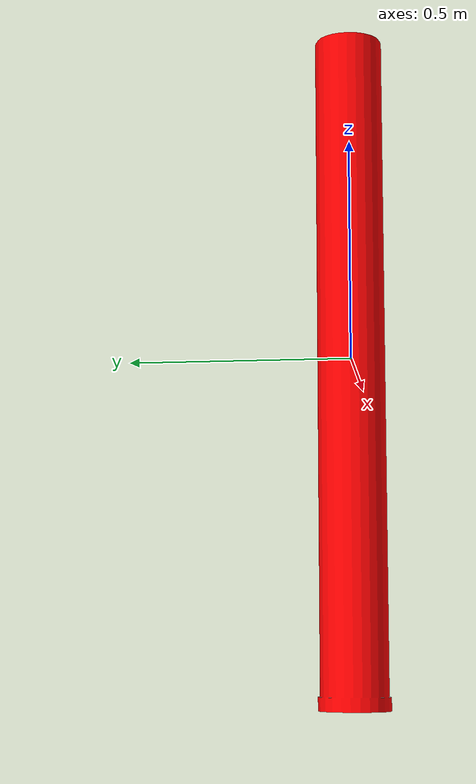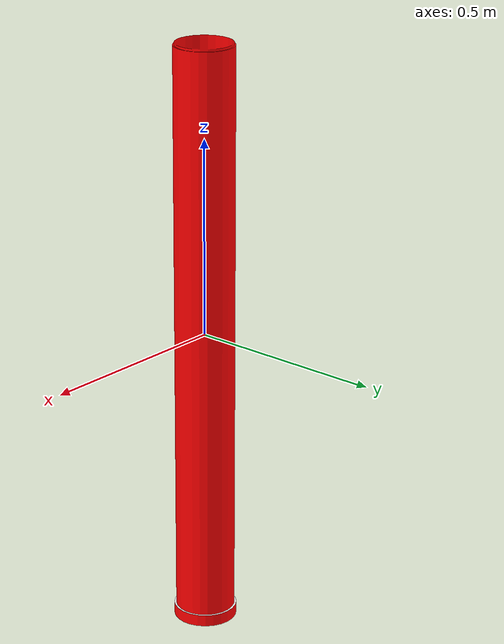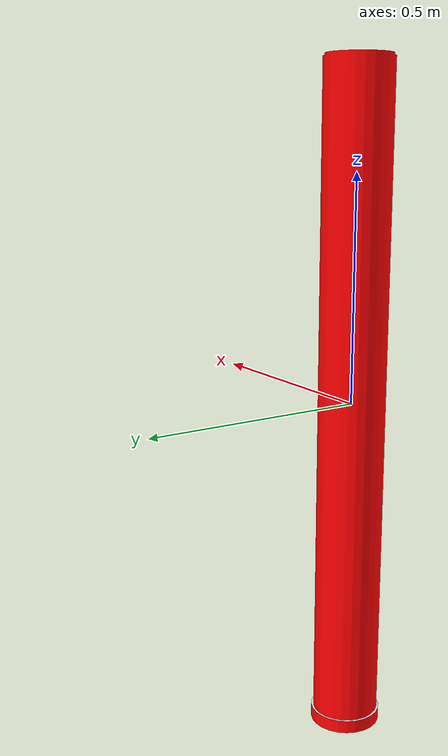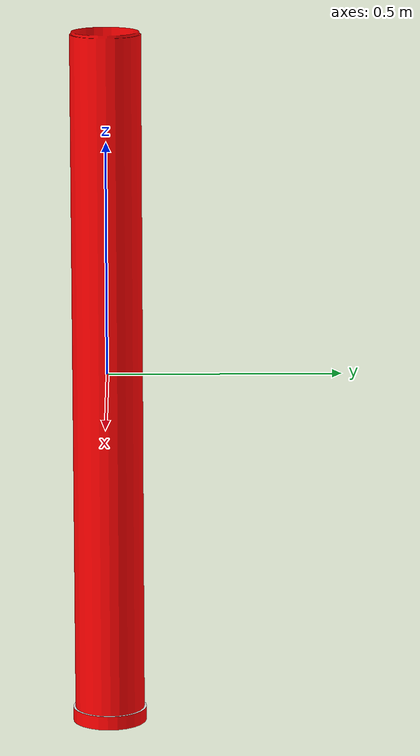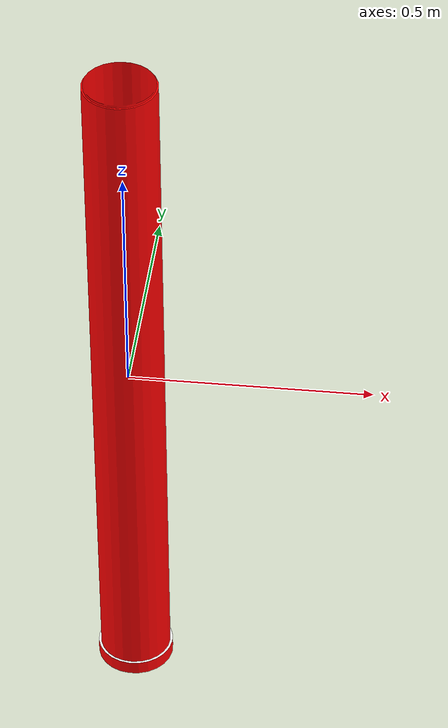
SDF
<?xml version="1.0" ?>
<sdf version="1.5">
  <model name="red_flare">
    <static>0</static>
    <link name="link">
      <inertial>
        <pose>0.03 0.0 0.0035 0.0 0.0 0.0</pose>
        <mass> 3.489 </mass>
        <inertia>
          <ixx> 0.6635455855 </ixx>
          <ixy> 0.0 </ixy>
          <ixz> 0.0 </ixz>
          <iyy> 0.6635455855 </iyy>
          <iyz> 0.0 </iyz>
          <izz> 0.01878894208 </izz>
        </inertia>
      </inertial>
      <collision name="collision">
        <geometry>
          <mesh>
            <uri>model://red_flare/meshes/red_flare.dae</uri>
          </mesh>
        </geometry>
      </collision>
      <visual name="visual">
        <geometry>
          <mesh>
            <uri>model://red_flare/meshes/red_flare.dae</uri>
          </mesh>
        </geometry>
      </visual>
    </link>
  </model>
</sdf>
